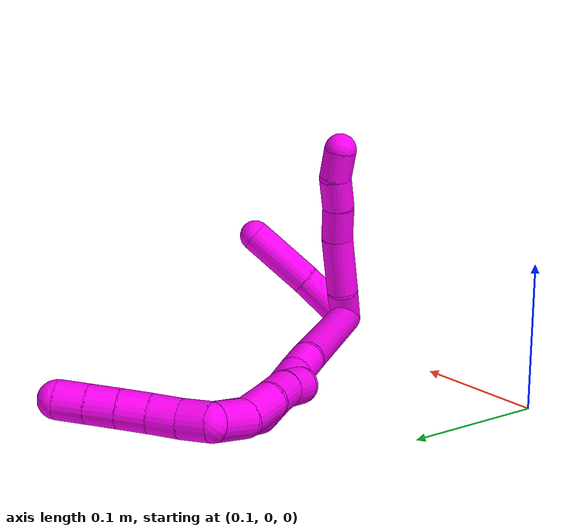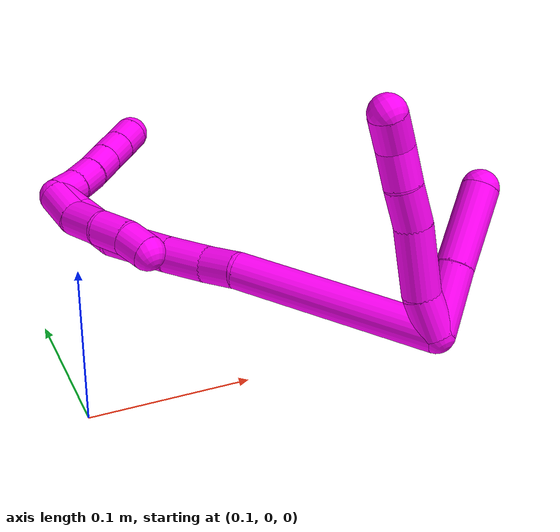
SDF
<sdf version="1.7">
 <world name="default">
  <model name="10">
   <static>0</static>
   <link name="10">
    <collision name="collision-cylinder-e_1_2_8">
     <pose>0.007057 0.004843 -0.011086 -2.72971 0.528103 -1.82588</pose>
     <geometry><cylinder><radius>0.0125</radius><length>0.028011</length></cylinder></geometry>
     <surface>
      <friction><ode><mu>1.16</mu><mu2>1.16</mu2><slip1>0</slip1><slip2>0</slip2></ode></friction>
      <contact><ode><kp>1e+06</kp><kd>1</kd><max_vel>0</max_vel><min_depth>0.001</min_depth></ode></contact>
     </surface>
    </collision>
    <visual name="visual-cylinder-e_1_2_8">
     <pose>0.007057 0.004843 -0.011086 -2.72971 0.528103 -1.82588</pose>
     <geometry><cylinder><radius>0.0125</radius><length>0.028011</length></cylinder></geometry>
     <material><ambient>1 0 0.964706 1</ambient></material>
    </visual>
    <collision name="collision-cylinder-e_2_8_9">
     <pose>0.029849 0.015137 -0.038558 -2.82046 0.738934 -2.34936</pose>
     <geometry><cylinder><radius>0.0125</radius><length>0.046725</length></cylinder></geometry>
     <surface>
      <friction><ode><mu>1.16</mu><mu2>1.16</mu2><slip1>0</slip1><slip2>0</slip2></ode></friction>
      <contact><ode><kp>1e+06</kp><kd>1</kd><max_vel>0</max_vel><min_depth>0.001</min_depth></ode></contact>
     </surface>
    </collision>
    <visual name="visual-cylinder-e_2_8_9">
     <pose>0.029849 0.015137 -0.038558 -2.82046 0.738934 -2.34936</pose>
     <geometry><cylinder><radius>0.0125</radius><length>0.046725</length></cylinder></geometry>
     <material><ambient>1 0 0.964706 1</ambient></material>
    </visual>
    <collision name="collision-cylinder-e_3_9_10">
     <pose>0.054168 0.02573 -0.064158 -2.63257 0.682922 -1.87779</pose>
     <geometry><cylinder><radius>0.0125</radius><length>0.027205</length></cylinder></geometry>
     <surface>
      <friction><ode><mu>1.16</mu><mu2>1.16</mu2><slip1>0</slip1><slip2>0</slip2></ode></friction>
      <contact><ode><kp>1e+06</kp><kd>1</kd><max_vel>0</max_vel><min_depth>0.001</min_depth></ode></contact>
     </surface>
    </collision>
    <visual name="visual-cylinder-e_3_9_10">
     <pose>0.054168 0.02573 -0.064158 -2.63257 0.682922 -1.87779</pose>
     <geometry><cylinder><radius>0.0125</radius><length>0.027205</length></cylinder></geometry>
     <material><ambient>1 0 0.964706 1</ambient></material>
    </visual>
    <collision name="collision-cylinder-e_4_10_11">
     <pose>0.070261 0.034202 -0.082634 -2.7964 0.65177 -2.18905</pose>
     <geometry><cylinder><radius>0.0125</radius><length>0.024758</length></cylinder></geometry>
     <surface>
      <friction><ode><mu>1.16</mu><mu2>1.16</mu2><slip1>0</slip1><slip2>0</slip2></ode></friction>
      <contact><ode><kp>1e+06</kp><kd>1</kd><max_vel>0</max_vel><min_depth>0.001</min_depth></ode></contact>
     </surface>
    </collision>
    <visual name="visual-cylinder-e_4_10_11">
     <pose>0.070261 0.034202 -0.082634 -2.7964 0.65177 -2.18905</pose>
     <geometry><cylinder><radius>0.0125</radius><length>0.024758</length></cylinder></geometry>
     <material><ambient>1 0 0.964706 1</ambient></material>
    </visual>
    <collision name="collision-cylinder-e_5_11_6">
     <pose>0.085747 0.042891 -0.098482 -2.45867 0.754134 -1.67885</pose>
     <geometry><cylinder><radius>0.0125</radius><length>0.023301</length></cylinder></geometry>
     <surface>
      <friction><ode><mu>1.16</mu><mu2>1.16</mu2><slip1>0</slip1><slip2>0</slip2></ode></friction>
      <contact><ode><kp>1e+06</kp><kd>1</kd><max_vel>0</max_vel><min_depth>0.001</min_depth></ode></contact>
     </surface>
    </collision>
    <visual name="visual-cylinder-e_5_11_6">
     <pose>0.085747 0.042891 -0.098482 -2.45867 0.754134 -1.67885</pose>
     <geometry><cylinder><radius>0.0125</radius><length>0.023301</length></cylinder></geometry>
     <material><ambient>1 0 0.964706 1</ambient></material>
    </visual>
    <collision name="collision-cylinder-e_1_2_12">
     <pose>0.01142 -0.011083 -0.015684 2.52643 0.536483 1.42659</pose>
     <geometry><cylinder><radius>0.0125</radius><length>0.044687</length></cylinder></geometry>
     <surface>
      <friction><ode><mu>1.16</mu><mu2>1.16</mu2><slip1>0</slip1><slip2>0</slip2></ode></friction>
      <contact><ode><kp>1e+06</kp><kd>1</kd><max_vel>0</max_vel><min_depth>0.001</min_depth></ode></contact>
     </surface>
    </collision>
    <visual name="visual-cylinder-e_1_2_12">
     <pose>0.01142 -0.011083 -0.015684 2.52643 0.536483 1.42659</pose>
     <geometry><cylinder><radius>0.0125</radius><length>0.044687</length></cylinder></geometry>
     <material><ambient>1 0 0.964706 1</ambient></material>
    </visual>
    <collision name="collision-cylinder-e_2_12_5">
     <pose>0.036362 -0.037286 -0.050167 2.46423 0.510867 1.27587</pose>
     <geometry><cylinder><radius>0.0125</radius><length>0.055313</length></cylinder></geometry>
     <surface>
      <friction><ode><mu>1.16</mu><mu2>1.16</mu2><slip1>0</slip1><slip2>0</slip2></ode></friction>
      <contact><ode><kp>1e+06</kp><kd>1</kd><max_vel>0</max_vel><min_depth>0.001</min_depth></ode></contact>
     </surface>
    </collision>
    <visual name="visual-cylinder-e_2_12_5">
     <pose>0.036362 -0.037286 -0.050167 2.46423 0.510867 1.27587</pose>
     <geometry><cylinder><radius>0.0125</radius><length>0.055313</length></cylinder></geometry>
     <material><ambient>1 0 0.964706 1</ambient></material>
    </visual>
    <collision name="collision-cylinder-e_1_2_13">
     <pose>-0.037896 0.024957 -0.053022 -2.70167 -0.574032 1.84508</pose>
     <geometry><cylinder><radius>0.0125</radius><length>0.139575</length></cylinder></geometry>
     <surface>
      <friction><ode><mu>1.16</mu><mu2>1.16</mu2><slip1>0</slip1><slip2>0</slip2></ode></friction>
      <contact><ode><kp>1e+06</kp><kd>1</kd><max_vel>0</max_vel><min_depth>0.001</min_depth></ode></contact>
     </surface>
    </collision>
    <visual name="visual-cylinder-e_1_2_13">
     <pose>-0.037896 0.024957 -0.053022 -2.70167 -0.574032 1.84508</pose>
     <geometry><cylinder><radius>0.0125</radius><length>0.139575</length></cylinder></geometry>
     <material><ambient>1 0 0.964706 1</ambient></material>
    </visual>
    <collision name="collision-cylinder-e_2_13_14">
     <pose>-0.084577 0.052086 -0.114606 -2.89298 -0.782687 2.55353</pose>
     <geometry><cylinder><radius>0.0125</radius><length>0.024915</length></cylinder></geometry>
     <surface>
      <friction><ode><mu>1.16</mu><mu2>1.16</mu2><slip1>0</slip1><slip2>0</slip2></ode></friction>
      <contact><ode><kp>1e+06</kp><kd>1</kd><max_vel>0</max_vel><min_depth>0.001</min_depth></ode></contact>
     </surface>
    </collision>
    <visual name="visual-cylinder-e_2_13_14">
     <pose>-0.084577 0.052086 -0.114606 -2.89298 -0.782687 2.55353</pose>
     <geometry><cylinder><radius>0.0125</radius><length>0.024915</length></cylinder></geometry>
     <material><ambient>1 0 0.964706 1</ambient></material>
    </visual>
    <collision name="collision-cylinder-e_3_14_15">
     <pose>-0.102918 0.059187 -0.134372 -2.72735 -0.662829 2.04514</pose>
     <geometry><cylinder><radius>0.0125</radius><length>0.031058</length></cylinder></geometry>
     <surface>
      <friction><ode><mu>1.16</mu><mu2>1.16</mu2><slip1>0</slip1><slip2>0</slip2></ode></friction>
      <contact><ode><kp>1e+06</kp><kd>1</kd><max_vel>0</max_vel><min_depth>0.001</min_depth></ode></contact>
     </surface>
    </collision>
    <visual name="visual-cylinder-e_3_14_15">
     <pose>-0.102918 0.059187 -0.134372 -2.72735 -0.662829 2.04514</pose>
     <geometry><cylinder><radius>0.0125</radius><length>0.031058</length></cylinder></geometry>
     <material><ambient>1 0 0.964706 1</ambient></material>
    </visual>
    <collision name="collision-cylinder-e_4_15_16">
     <pose>-0.12696 0.07009 -0.162993 -2.81101 -0.666639 2.24366</pose>
     <geometry><cylinder><radius>0.0125</radius><length>0.046855</length></cylinder></geometry>
     <surface>
      <friction><ode><mu>1.16</mu><mu2>1.16</mu2><slip1>0</slip1><slip2>0</slip2></ode></friction>
      <contact><ode><kp>1e+06</kp><kd>1</kd><max_vel>0</max_vel><min_depth>0.001</min_depth></ode></contact>
     </surface>
    </collision>
    <visual name="visual-cylinder-e_4_15_16">
     <pose>-0.12696 0.07009 -0.162993 -2.81101 -0.666639 2.24366</pose>
     <geometry><cylinder><radius>0.0125</radius><length>0.046855</length></cylinder></geometry>
     <material><ambient>1 0 0.964706 1</ambient></material>
    </visual>
    <collision name="collision-cylinder-e_5_16_17">
     <pose>-0.147598 0.078698 -0.195462 -2.9685 -0.382684 2.29938</pose>
     <geometry><cylinder><radius>0.0125</radius><length>0.032948</length></cylinder></geometry>
     <surface>
      <friction><ode><mu>1.16</mu><mu2>1.16</mu2><slip1>0</slip1><slip2>0</slip2></ode></friction>
      <contact><ode><kp>1e+06</kp><kd>1</kd><max_vel>0</max_vel><min_depth>0.001</min_depth></ode></contact>
     </surface>
    </collision>
    <visual name="visual-cylinder-e_5_16_17">
     <pose>-0.147598 0.078698 -0.195462 -2.9685 -0.382684 2.29938</pose>
     <geometry><cylinder><radius>0.0125</radius><length>0.032948</length></cylinder></geometry>
     <material><ambient>1 0 0.964706 1</ambient></material>
    </visual>
    <collision name="collision-cylinder-e_6_17_1">
     <pose>-0.158346 0.083325 -0.221775 -2.96623 -0.382222 2.28862</pose>
     <geometry><cylinder><radius>0.0125</radius><length>0.024648</length></cylinder></geometry>
     <surface>
      <friction><ode><mu>1.16</mu><mu2>1.16</mu2><slip1>0</slip1><slip2>0</slip2></ode></friction>
      <contact><ode><kp>1e+06</kp><kd>1</kd><max_vel>0</max_vel><min_depth>0.001</min_depth></ode></contact>
     </surface>
    </collision>
    <visual name="visual-cylinder-e_6_17_1">
     <pose>-0.158346 0.083325 -0.221775 -2.96623 -0.382222 2.28862</pose>
     <geometry><cylinder><radius>0.0125</radius><length>0.024648</length></cylinder></geometry>
     <material><ambient>1 0 0.964706 1</ambient></material>
    </visual>
    <collision name="collision-cylinder-e_1_1_18">
     <pose>-0.157777 0.086635 -0.220175 -0.101883 0.380216 -0.019622</pose>
     <geometry><cylinder><radius>0.0125</radius><length>0.027842</length></cylinder></geometry>
     <surface>
      <friction><ode><mu>1.16</mu><mu2>1.16</mu2><slip1>0</slip1><slip2>0</slip2></ode></friction>
      <contact><ode><kp>1e+06</kp><kd>1</kd><max_vel>0</max_vel><min_depth>0.001</min_depth></ode></contact>
     </surface>
    </collision>
    <visual name="visual-cylinder-e_1_1_18">
     <pose>-0.157777 0.086635 -0.220175 -0.101883 0.380216 -0.019622</pose>
     <geometry><cylinder><radius>0.0125</radius><length>0.027842</length></cylinder></geometry>
     <material><ambient>1 0 0.964706 1</ambient></material>
    </visual>
    <collision name="collision-cylinder-e_2_18_19">
     <pose>-0.143377 0.087738 -0.196651 0.019813 0.713513 0.007385</pose>
     <geometry><cylinder><radius>0.0125</radius><length>0.028215</length></cylinder></geometry>
     <surface>
      <friction><ode><mu>1.16</mu><mu2>1.16</mu2><slip1>0</slip1><slip2>0</slip2></ode></friction>
      <contact><ode><kp>1e+06</kp><kd>1</kd><max_vel>0</max_vel><min_depth>0.001</min_depth></ode></contact>
     </surface>
    </collision>
    <visual name="visual-cylinder-e_2_18_19">
     <pose>-0.143377 0.087738 -0.196651 0.019813 0.713513 0.007385</pose>
     <geometry><cylinder><radius>0.0125</radius><length>0.028215</length></cylinder></geometry>
     <material><ambient>1 0 0.964706 1</ambient></material>
    </visual>
    <collision name="collision-cylinder-e_3_19_20">
     <pose>-0.127139 0.085164 -0.17663 0.247346 0.627875 0.080675</pose>
     <geometry><cylinder><radius>0.0125</radius><length>0.02385</length></cylinder></geometry>
     <surface>
      <friction><ode><mu>1.16</mu><mu2>1.16</mu2><slip1>0</slip1><slip2>0</slip2></ode></friction>
      <contact><ode><kp>1e+06</kp><kd>1</kd><max_vel>0</max_vel><min_depth>0.001</min_depth></ode></contact>
     </surface>
    </collision>
    <visual name="visual-cylinder-e_3_19_20">
     <pose>-0.127139 0.085164 -0.17663 0.247346 0.627875 0.080675</pose>
     <geometry><cylinder><radius>0.0125</radius><length>0.02385</length></cylinder></geometry>
     <material><ambient>1 0 0.964706 1</ambient></material>
    </visual>
    <collision name="collision-cylinder-e_4_20_4">
     <pose>-0.115844 0.08163 -0.158264 0.129285 0.441125 0.029025</pose>
     <geometry><cylinder><radius>0.0125</radius><length>0.020093</length></cylinder></geometry>
     <surface>
      <friction><ode><mu>1.16</mu><mu2>1.16</mu2><slip1>0</slip1><slip2>0</slip2></ode></friction>
      <contact><ode><kp>1e+06</kp><kd>1</kd><max_vel>0</max_vel><min_depth>0.001</min_depth></ode></contact>
     </surface>
    </collision>
    <visual name="visual-cylinder-e_4_20_4">
     <pose>-0.115844 0.08163 -0.158264 0.129285 0.441125 0.029025</pose>
     <geometry><cylinder><radius>0.0125</radius><length>0.020093</length></cylinder></geometry>
     <material><ambient>1 0 0.964706 1</ambient></material>
    </visual>
    <collision name="collision-cylinder-e_1_1_21">
     <pose>-0.162608 0.075782 -0.23602 1.87413 0.033535 0.045631</pose>
     <geometry><cylinder><radius>0.0125</radius><length>0.02</length></cylinder></geometry>
     <surface>
      <friction><ode><mu>1.16</mu><mu2>1.16</mu2><slip1>0</slip1><slip2>0</slip2></ode></friction>
      <contact><ode><kp>1e+06</kp><kd>1</kd><max_vel>0</max_vel><min_depth>0.001</min_depth></ode></contact>
     </surface>
    </collision>
    <visual name="visual-cylinder-e_1_1_21">
     <pose>-0.162608 0.075782 -0.23602 1.87413 0.033535 0.045631</pose>
     <geometry><cylinder><radius>0.0125</radius><length>0.02</length></cylinder></geometry>
     <material><ambient>1 0 0.964706 1</ambient></material>
    </visual>
    <collision name="collision-cylinder-e_2_21_22">
     <pose>-0.161672 0.057164 -0.243151 1.99903 0.06009 0.093445</pose>
     <geometry><cylinder><radius>0.0125</radius><length>0.02</length></cylinder></geometry>
     <surface>
      <friction><ode><mu>1.16</mu><mu2>1.16</mu2><slip1>0</slip1><slip2>0</slip2></ode></friction>
      <contact><ode><kp>1e+06</kp><kd>1</kd><max_vel>0</max_vel><min_depth>0.001</min_depth></ode></contact>
     </surface>
    </collision>
    <visual name="visual-cylinder-e_2_21_22">
     <pose>-0.161672 0.057164 -0.243151 1.99903 0.06009 0.093445</pose>
     <geometry><cylinder><radius>0.0125</radius><length>0.02</length></cylinder></geometry>
     <material><ambient>1 0 0.964706 1</ambient></material>
    </visual>
    <collision name="collision-cylinder-e_3_22_23">
     <pose>-0.160859 0.039397 -0.252246 2.08882 0.021241 0.036553</pose>
     <geometry><cylinder><radius>0.0125</radius><length>0.02</length></cylinder></geometry>
     <surface>
      <friction><ode><mu>1.16</mu><mu2>1.16</mu2><slip1>0</slip1><slip2>0</slip2></ode></friction>
      <contact><ode><kp>1e+06</kp><kd>1</kd><max_vel>0</max_vel><min_depth>0.001</min_depth></ode></contact>
     </surface>
    </collision>
    <visual name="visual-cylinder-e_3_22_23">
     <pose>-0.160859 0.039397 -0.252246 2.08882 0.021241 0.036553</pose>
     <geometry><cylinder><radius>0.0125</radius><length>0.02</length></cylinder></geometry>
     <material><ambient>1 0 0.964706 1</ambient></material>
    </visual>
    <collision name="collision-cylinder-e_4_23_24">
     <pose>-0.160461 0.021975 -0.26206 2.07879 0.018527 0.031517</pose>
     <geometry><cylinder><radius>0.0125</radius><length>0.02</length></cylinder></geometry>
     <surface>
      <friction><ode><mu>1.16</mu><mu2>1.16</mu2><slip1>0</slip1><slip2>0</slip2></ode></friction>
      <contact><ode><kp>1e+06</kp><kd>1</kd><max_vel>0</max_vel><min_depth>0.001</min_depth></ode></contact>
     </surface>
    </collision>
    <visual name="visual-cylinder-e_4_23_24">
     <pose>-0.160461 0.021975 -0.26206 2.07879 0.018527 0.031517</pose>
     <geometry><cylinder><radius>0.0125</radius><length>0.02</length></cylinder></geometry>
     <material><ambient>1 0 0.964706 1</ambient></material>
    </visual>
    <collision name="collision-cylinder-e_5_24_3">
     <pose>-0.160148 0.004566 -0.271899 2.09159 0.012851 0.022186</pose>
     <geometry><cylinder><radius>0.0125</radius><length>0.02</length></cylinder></geometry>
     <surface>
      <friction><ode><mu>1.16</mu><mu2>1.16</mu2><slip1>0</slip1><slip2>0</slip2></ode></friction>
      <contact><ode><kp>1e+06</kp><kd>1</kd><max_vel>0</max_vel><min_depth>0.001</min_depth></ode></contact>
     </surface>
    </collision>
    <visual name="visual-cylinder-e_5_24_3">
     <pose>-0.160148 0.004566 -0.271899 2.09159 0.012851 0.022186</pose>
     <geometry><cylinder><radius>0.0125</radius><length>0.02</length></cylinder></geometry>
     <material><ambient>1 0 0.964706 1</ambient></material>
    </visual>
    <collision name="collision-sphere-3">
     <pose>-0.160019 -0.004108 -0.276874 0 -0 0</pose>
     <geometry><sphere><radius>0.0125</radius></sphere></geometry>
     <surface>
      <friction><ode><mu>1.16</mu><mu2>1.16</mu2><slip1>0</slip1><slip2>0</slip2></ode></friction>
      <contact><ode><kp>1e+06</kp><kd>1</kd><max_vel>0</max_vel><min_depth>0.001</min_depth></ode></contact>
     </surface>
    </collision>
    <visual name="visual-sphere-3">
     <pose>-0.160019 -0.004108 -0.276874 0 -0 0</pose>
     <geometry><sphere><radius>0.0125</radius></sphere></geometry>
     <material><ambient>1 0 0.964706 1</ambient></material>
    </visual>
    <collision name="collision-sphere-24">
     <pose>-0.160276 0.013239 -0.266924 0 -0 0</pose>
     <geometry><sphere><radius>0.0125</radius></sphere></geometry>
     <surface>
      <friction><ode><mu>1.16</mu><mu2>1.16</mu2><slip1>0</slip1><slip2>0</slip2></ode></friction>
      <contact><ode><kp>1e+06</kp><kd>1</kd><max_vel>0</max_vel><min_depth>0.001</min_depth></ode></contact>
     </surface>
    </collision>
    <visual name="visual-sphere-24">
     <pose>-0.160276 0.013239 -0.266924 0 -0 0</pose>
     <geometry><sphere><radius>0.0125</radius></sphere></geometry>
     <material><ambient>1 0 0.964706 1</ambient></material>
    </visual>
    <collision name="collision-sphere-23">
     <pose>-0.160647 0.030711 -0.257197 0 -0 0</pose>
     <geometry><sphere><radius>0.0125</radius></sphere></geometry>
     <surface>
      <friction><ode><mu>1.16</mu><mu2>1.16</mu2><slip1>0</slip1><slip2>0</slip2></ode></friction>
      <contact><ode><kp>1e+06</kp><kd>1</kd><max_vel>0</max_vel><min_depth>0.001</min_depth></ode></contact>
     </surface>
    </collision>
    <visual name="visual-sphere-23">
     <pose>-0.160647 0.030711 -0.257197 0 -0 0</pose>
     <geometry><sphere><radius>0.0125</radius></sphere></geometry>
     <material><ambient>1 0 0.964706 1</ambient></material>
    </visual>
    <collision name="collision-sphere-22">
     <pose>-0.161071 0.048083 -0.247296 0 -0 0</pose>
     <geometry><sphere><radius>0.0125</radius></sphere></geometry>
     <surface>
      <friction><ode><mu>1.16</mu><mu2>1.16</mu2><slip1>0</slip1><slip2>0</slip2></ode></friction>
      <contact><ode><kp>1e+06</kp><kd>1</kd><max_vel>0</max_vel><min_depth>0.001</min_depth></ode></contact>
     </surface>
    </collision>
    <visual name="visual-sphere-22">
     <pose>-0.161071 0.048083 -0.247296 0 -0 0</pose>
     <geometry><sphere><radius>0.0125</radius></sphere></geometry>
     <material><ambient>1 0 0.964706 1</ambient></material>
    </visual>
    <collision name="collision-sphere-21">
     <pose>-0.162273 0.066244 -0.239005 0 -0 0</pose>
     <geometry><sphere><radius>0.0125</radius></sphere></geometry>
     <surface>
      <friction><ode><mu>1.16</mu><mu2>1.16</mu2><slip1>0</slip1><slip2>0</slip2></ode></friction>
      <contact><ode><kp>1e+06</kp><kd>1</kd><max_vel>0</max_vel><min_depth>0.001</min_depth></ode></contact>
     </surface>
    </collision>
    <visual name="visual-sphere-21">
     <pose>-0.162273 0.066244 -0.239005 0 -0 0</pose>
     <geometry><sphere><radius>0.0125</radius></sphere></geometry>
     <material><ambient>1 0 0.964706 1</ambient></material>
    </visual>
    <collision name="collision-sphere-4">
     <pose>-0.111555 0.080459 -0.149255 0 -0 0</pose>
     <geometry><sphere><radius>0.0125</radius></sphere></geometry>
     <surface>
      <friction><ode><mu>1.16</mu><mu2>1.16</mu2><slip1>0</slip1><slip2>0</slip2></ode></friction>
      <contact><ode><kp>1e+06</kp><kd>1</kd><max_vel>0</max_vel><min_depth>0.001</min_depth></ode></contact>
     </surface>
    </collision>
    <visual name="visual-sphere-4">
     <pose>-0.111555 0.080459 -0.149255 0 -0 0</pose>
     <geometry><sphere><radius>0.0125</radius></sphere></geometry>
     <material><ambient>1 0 0.964706 1</ambient></material>
    </visual>
    <collision name="collision-sphere-20">
     <pose>-0.120134 0.082802 -0.167273 0 -0 0</pose>
     <geometry><sphere><radius>0.0125</radius></sphere></geometry>
     <surface>
      <friction><ode><mu>1.16</mu><mu2>1.16</mu2><slip1>0</slip1><slip2>0</slip2></ode></friction>
      <contact><ode><kp>1e+06</kp><kd>1</kd><max_vel>0</max_vel><min_depth>0.001</min_depth></ode></contact>
     </surface>
    </collision>
    <visual name="visual-sphere-20">
     <pose>-0.120134 0.082802 -0.167273 0 -0 0</pose>
     <geometry><sphere><radius>0.0125</radius></sphere></geometry>
     <material><ambient>1 0 0.964706 1</ambient></material>
    </visual>
    <collision name="collision-sphere-6">
     <pose>0.093723 0.04825 -0.105069 0 -0 0</pose>
     <geometry><sphere><radius>0.0125</radius></sphere></geometry>
     <surface>
      <friction><ode><mu>1.16</mu><mu2>1.16</mu2><slip1>0</slip1><slip2>0</slip2></ode></friction>
      <contact><ode><kp>1e+06</kp><kd>1</kd><max_vel>0</max_vel><min_depth>0.001</min_depth></ode></contact>
     </surface>
    </collision>
    <visual name="visual-sphere-6">
     <pose>0.093723 0.04825 -0.105069 0 -0 0</pose>
     <geometry><sphere><radius>0.0125</radius></sphere></geometry>
     <material><ambient>1 0 0.964706 1</ambient></material>
    </visual>
    <collision name="collision-sphere-11">
     <pose>0.07777 0.037532 -0.091894 0 -0 0</pose>
     <geometry><sphere><radius>0.0125</radius></sphere></geometry>
     <surface>
      <friction><ode><mu>1.16</mu><mu2>1.16</mu2><slip1>0</slip1><slip2>0</slip2></ode></friction>
      <contact><ode><kp>1e+06</kp><kd>1</kd><max_vel>0</max_vel><min_depth>0.001</min_depth></ode></contact>
     </surface>
    </collision>
    <visual name="visual-sphere-11">
     <pose>0.07777 0.037532 -0.091894 0 -0 0</pose>
     <geometry><sphere><radius>0.0125</radius></sphere></geometry>
     <material><ambient>1 0 0.964706 1</ambient></material>
    </visual>
    <collision name="collision-sphere-10">
     <pose>0.062752 0.030872 -0.073373 0 -0 0</pose>
     <geometry><sphere><radius>0.0125</radius></sphere></geometry>
     <surface>
      <friction><ode><mu>1.16</mu><mu2>1.16</mu2><slip1>0</slip1><slip2>0</slip2></ode></friction>
      <contact><ode><kp>1e+06</kp><kd>1</kd><max_vel>0</max_vel><min_depth>0.001</min_depth></ode></contact>
     </surface>
    </collision>
    <visual name="visual-sphere-10">
     <pose>0.062752 0.030872 -0.073373 0 -0 0</pose>
     <geometry><sphere><radius>0.0125</radius></sphere></geometry>
     <material><ambient>1 0 0.964706 1</ambient></material>
    </visual>
    <collision name="collision-sphere-9">
     <pose>0.045584 0.020588 -0.054944 0 -0 0</pose>
     <geometry><sphere><radius>0.0125</radius></sphere></geometry>
     <surface>
      <friction><ode><mu>1.16</mu><mu2>1.16</mu2><slip1>0</slip1><slip2>0</slip2></ode></friction>
      <contact><ode><kp>1e+06</kp><kd>1</kd><max_vel>0</max_vel><min_depth>0.001</min_depth></ode></contact>
     </surface>
    </collision>
    <visual name="visual-sphere-9">
     <pose>0.045584 0.020588 -0.054944 0 -0 0</pose>
     <geometry><sphere><radius>0.0125</radius></sphere></geometry>
     <material><ambient>1 0 0.964706 1</ambient></material>
    </visual>
    <collision name="collision-sphere-2">
     <geometry><sphere><radius>0.0125</radius></sphere></geometry>
     <surface>
      <friction><ode><mu>1.16</mu><mu2>1.16</mu2><slip1>0</slip1><slip2>0</slip2></ode></friction>
      <contact><ode><kp>1e+06</kp><kd>1</kd><max_vel>0</max_vel><min_depth>0.001</min_depth></ode></contact>
     </surface>
    </collision>
    <visual name="visual-sphere-2">
     <geometry><sphere><radius>0.0125</radius></sphere></geometry>
     <material><ambient>1 0 0.964706 1</ambient></material>
    </visual>
    <collision name="collision-sphere-19">
     <pose>-0.134144 0.087527 -0.185987 0 -0 0</pose>
     <geometry><sphere><radius>0.0125</radius></sphere></geometry>
     <surface>
      <friction><ode><mu>1.16</mu><mu2>1.16</mu2><slip1>0</slip1><slip2>0</slip2></ode></friction>
      <contact><ode><kp>1e+06</kp><kd>1</kd><max_vel>0</max_vel><min_depth>0.001</min_depth></ode></contact>
     </surface>
    </collision>
    <visual name="visual-sphere-19">
     <pose>-0.134144 0.087527 -0.185987 0 -0 0</pose>
     <geometry><sphere><radius>0.0125</radius></sphere></geometry>
     <material><ambient>1 0 0.964706 1</ambient></material>
    </visual>
    <collision name="collision-sphere-8">
     <pose>0.014115 0.009686 -0.022171 0 -0 0</pose>
     <geometry><sphere><radius>0.0125</radius></sphere></geometry>
     <surface>
      <friction><ode><mu>1.16</mu><mu2>1.16</mu2><slip1>0</slip1><slip2>0</slip2></ode></friction>
      <contact><ode><kp>1e+06</kp><kd>1</kd><max_vel>0</max_vel><min_depth>0.001</min_depth></ode></contact>
     </surface>
    </collision>
    <visual name="visual-sphere-8">
     <pose>0.014115 0.009686 -0.022171 0 -0 0</pose>
     <geometry><sphere><radius>0.0125</radius></sphere></geometry>
     <material><ambient>1 0 0.964706 1</ambient></material>
    </visual>
    <collision name="collision-sphere-12">
     <pose>0.02284 -0.022165 -0.031368 0 -0 0</pose>
     <geometry><sphere><radius>0.0125</radius></sphere></geometry>
     <surface>
      <friction><ode><mu>1.16</mu><mu2>1.16</mu2><slip1>0</slip1><slip2>0</slip2></ode></friction>
      <contact><ode><kp>1e+06</kp><kd>1</kd><max_vel>0</max_vel><min_depth>0.001</min_depth></ode></contact>
     </surface>
    </collision>
    <visual name="visual-sphere-12">
     <pose>0.02284 -0.022165 -0.031368 0 -0 0</pose>
     <geometry><sphere><radius>0.0125</radius></sphere></geometry>
     <material><ambient>1 0 0.964706 1</ambient></material>
    </visual>
    <collision name="collision-sphere-5">
     <pose>0.049885 -0.052406 -0.068966 0 -0 0</pose>
     <geometry><sphere><radius>0.0125</radius></sphere></geometry>
     <surface>
      <friction><ode><mu>1.16</mu><mu2>1.16</mu2><slip1>0</slip1><slip2>0</slip2></ode></friction>
      <contact><ode><kp>1e+06</kp><kd>1</kd><max_vel>0</max_vel><min_depth>0.001</min_depth></ode></contact>
     </surface>
    </collision>
    <visual name="visual-sphere-5">
     <pose>0.049885 -0.052406 -0.068966 0 -0 0</pose>
     <geometry><sphere><radius>0.0125</radius></sphere></geometry>
     <material><ambient>1 0 0.964706 1</ambient></material>
    </visual>
    <collision name="collision-sphere-13">
     <pose>-0.075793 0.049913 -0.106045 0 -0 0</pose>
     <geometry><sphere><radius>0.0125</radius></sphere></geometry>
     <surface>
      <friction><ode><mu>1.16</mu><mu2>1.16</mu2><slip1>0</slip1><slip2>0</slip2></ode></friction>
      <contact><ode><kp>1e+06</kp><kd>1</kd><max_vel>0</max_vel><min_depth>0.001</min_depth></ode></contact>
     </surface>
    </collision>
    <visual name="visual-sphere-13">
     <pose>-0.075793 0.049913 -0.106045 0 -0 0</pose>
     <geometry><sphere><radius>0.0125</radius></sphere></geometry>
     <material><ambient>1 0 0.964706 1</ambient></material>
    </visual>
    <collision name="collision-sphere-14">
     <pose>-0.093362 0.05426 -0.123167 0 -0 0</pose>
     <geometry><sphere><radius>0.0125</radius></sphere></geometry>
     <surface>
      <friction><ode><mu>1.16</mu><mu2>1.16</mu2><slip1>0</slip1><slip2>0</slip2></ode></friction>
      <contact><ode><kp>1e+06</kp><kd>1</kd><max_vel>0</max_vel><min_depth>0.001</min_depth></ode></contact>
     </surface>
    </collision>
    <visual name="visual-sphere-14">
     <pose>-0.093362 0.05426 -0.123167 0 -0 0</pose>
     <geometry><sphere><radius>0.0125</radius></sphere></geometry>
     <material><ambient>1 0 0.964706 1</ambient></material>
    </visual>
    <collision name="collision-sphere-15">
     <pose>-0.112474 0.064113 -0.145578 0 -0 0</pose>
     <geometry><sphere><radius>0.0125</radius></sphere></geometry>
     <surface>
      <friction><ode><mu>1.16</mu><mu2>1.16</mu2><slip1>0</slip1><slip2>0</slip2></ode></friction>
      <contact><ode><kp>1e+06</kp><kd>1</kd><max_vel>0</max_vel><min_depth>0.001</min_depth></ode></contact>
     </surface>
    </collision>
    <visual name="visual-sphere-15">
     <pose>-0.112474 0.064113 -0.145578 0 -0 0</pose>
     <geometry><sphere><radius>0.0125</radius></sphere></geometry>
     <material><ambient>1 0 0.964706 1</ambient></material>
    </visual>
    <collision name="collision-sphere-16">
     <pose>-0.141446 0.076066 -0.180407 0 -0 0</pose>
     <geometry><sphere><radius>0.0125</radius></sphere></geometry>
     <surface>
      <friction><ode><mu>1.16</mu><mu2>1.16</mu2><slip1>0</slip1><slip2>0</slip2></ode></friction>
      <contact><ode><kp>1e+06</kp><kd>1</kd><max_vel>0</max_vel><min_depth>0.001</min_depth></ode></contact>
     </surface>
    </collision>
    <visual name="visual-sphere-16">
     <pose>-0.141446 0.076066 -0.180407 0 -0 0</pose>
     <geometry><sphere><radius>0.0125</radius></sphere></geometry>
     <material><ambient>1 0 0.964706 1</ambient></material>
    </visual>
    <collision name="collision-sphere-17">
     <pose>-0.15375 0.08133 -0.210516 0 -0 0</pose>
     <geometry><sphere><radius>0.0125</radius></sphere></geometry>
     <surface>
      <friction><ode><mu>1.16</mu><mu2>1.16</mu2><slip1>0</slip1><slip2>0</slip2></ode></friction>
      <contact><ode><kp>1e+06</kp><kd>1</kd><max_vel>0</max_vel><min_depth>0.001</min_depth></ode></contact>
     </surface>
    </collision>
    <visual name="visual-sphere-17">
     <pose>-0.15375 0.08133 -0.210516 0 -0 0</pose>
     <geometry><sphere><radius>0.0125</radius></sphere></geometry>
     <material><ambient>1 0 0.964706 1</ambient></material>
    </visual>
    <collision name="collision-sphere-1">
     <pose>-0.162943 0.08532 -0.233035 0 -0 0</pose>
     <geometry><sphere><radius>0.0125</radius></sphere></geometry>
     <surface>
      <friction><ode><mu>1.16</mu><mu2>1.16</mu2><slip1>0</slip1><slip2>0</slip2></ode></friction>
      <contact><ode><kp>1e+06</kp><kd>1</kd><max_vel>0</max_vel><min_depth>0.001</min_depth></ode></contact>
     </surface>
    </collision>
    <visual name="visual-sphere-1">
     <pose>-0.162943 0.08532 -0.233035 0 -0 0</pose>
     <geometry><sphere><radius>0.0125</radius></sphere></geometry>
     <material><ambient>1 0 0.964706 1</ambient></material>
    </visual>
    <collision name="collision-sphere-18">
     <pose>-0.15261 0.08795 -0.207315 0 -0 0</pose>
     <geometry><sphere><radius>0.0125</radius></sphere></geometry>
     <surface>
      <friction><ode><mu>1.16</mu><mu2>1.16</mu2><slip1>0</slip1><slip2>0</slip2></ode></friction>
      <contact><ode><kp>1e+06</kp><kd>1</kd><max_vel>0</max_vel><min_depth>0.001</min_depth></ode></contact>
     </surface>
    </collision>
    <visual name="visual-sphere-18">
     <pose>-0.15261 0.08795 -0.207315 0 -0 0</pose>
     <geometry><sphere><radius>0.0125</radius></sphere></geometry>
     <material><ambient>1 0 0.964706 1</ambient></material>
    </visual>
    <inertial>
     <pose>-0.061194 0.037224 -0.120034 0 -0 0</pose>
     <mass>0.75</mass>
     <inertia><ixx>0.000162</ixx><ixy>0</ixy><ixz>0</ixz><iyy>0.000358</iyy><iyz>0</iyz><izz>6e-06</izz></inertia>
    </inertial>
   </link>
   <pose>0.320387 -0.01384 0.011511 2.74578 -0.941588 -0.890813</pose>
  </model>
 </world>
</sdf>
